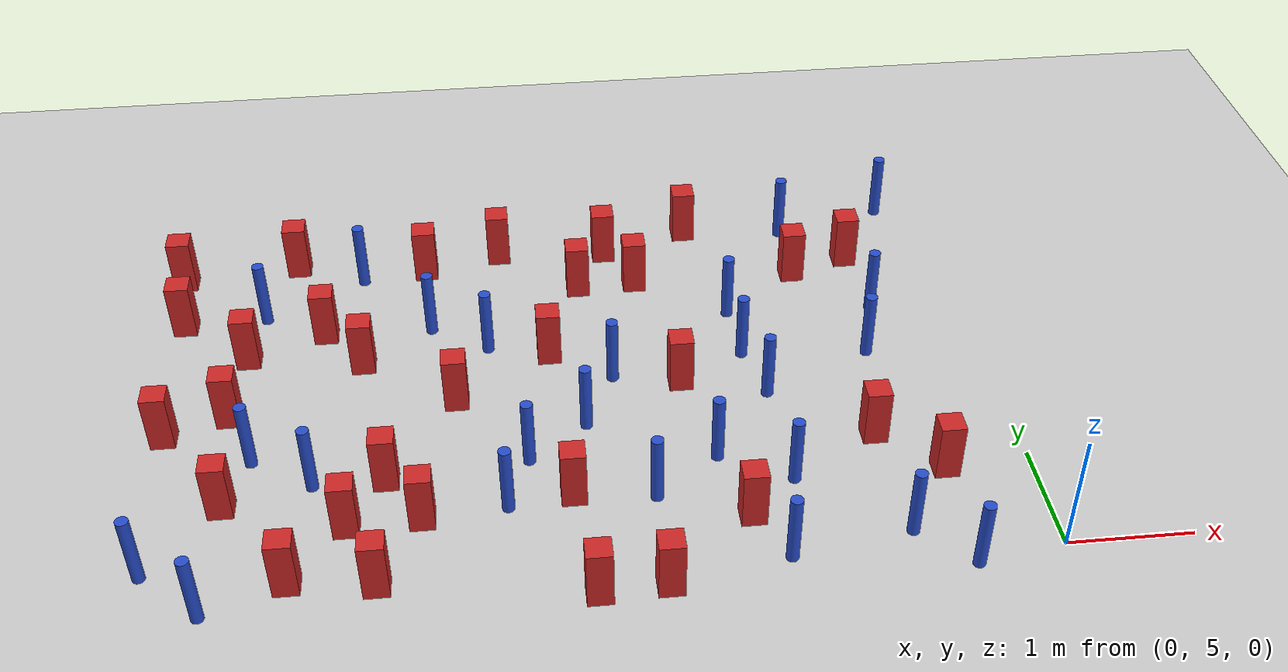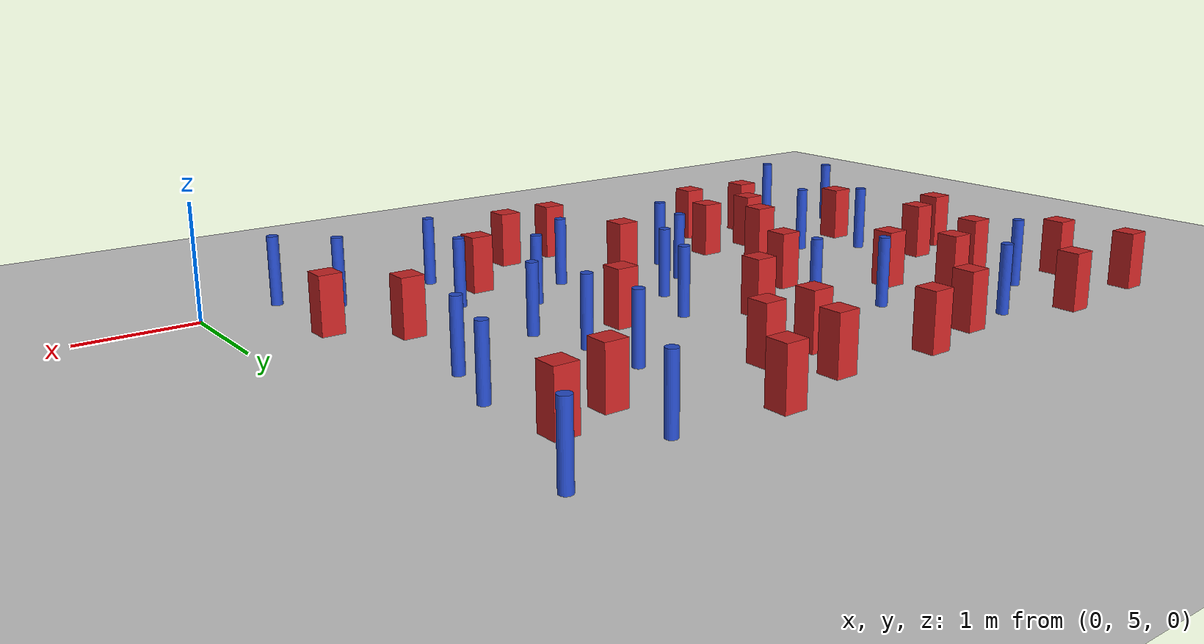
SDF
<sdf version="1.6">
 <world name="default">
  <model name="ground_plane">
   <static>1</static>
   <link name="link">
    <collision name="collision">
     <geometry><plane><normal>0 0 1</normal><size>100 100</size></plane></geometry>
     <surface><friction><ode><mu>100</mu><mu2>50</mu2></ode></friction></surface>
    </collision>
    <visual name="visual">
     <cast_shadows>0</cast_shadows>
     <geometry><plane><normal>0 0 1</normal><size>100 100</size></plane></geometry>
     <material>
      <ambient>1.0 1.0 1.0 1.0</ambient>
      <diffuse>0.8 0.8 0.8 1.0</diffuse>
      <specular>0.01 0.01 0.01 1.000000</specular>
     </material>
    </visual>
   </link>
  </model>
  <model name="square_post_obstacle5">
   <static>true</static>
   <pose>-5.93562843319 9.12042598517 8.22691968438e-08 7.22125133819e-06 -7.54495500217e-07 2.29674213826e-05</pose>
   <link name="link">
    <pose>0 0 0.25 0 -0 0</pose>
    <inertial>
     <mass>100</mass>
     <inertia>
      <ixx>0.166667</ixx>
      <ixy>0</ixy>
      <ixz>0</ixz>
      <iyy>0.166667</iyy>
      <iyz>0</iyz>
      <izz>0.166667</izz>
     </inertia>
    </inertial>
    <collision name="collision"><geometry><box><size>.2 .2 .5</size></box></geometry></collision>
    <visual name="visual">
     <geometry><box><size>.2 .2 .5</size></box></geometry>
     <material>
      <script><name>Gazebo/Red</name><uri>file://media/materials/scripts/gazebo.material</uri></script>
     </material>
    </visual>
   </link>
  </model>
  <model name="square_post_obstacle8">
   <static>true</static>
   <pose>-6.37462192546 7.08235323561 8.22691968438e-08 7.2212513382e-06 -7.54495500217e-07 2.29674213826e-05</pose>
   <link name="link">
    <pose>0 0 0.25 0 -0 0</pose>
    <inertial>
     <mass>100</mass>
     <inertia>
      <ixx>0.166667</ixx>
      <ixy>0</ixy>
      <ixz>0</ixz>
      <iyy>0.166667</iyy>
      <iyz>0</iyz>
      <izz>0.166667</izz>
     </inertia>
    </inertial>
    <collision name="collision"><geometry><box><size>.2 .2 .5</size></box></geometry></collision>
    <visual name="visual">
     <geometry><box><size>.2 .2 .5</size></box></geometry>
     <material>
      <script><name>Gazebo/Red</name><uri>file://media/materials/scripts/gazebo.material</uri></script>
     </material>
    </visual>
   </link>
  </model>
  <model name="pole_obstacle10">
   <static>true</static>
   <pose>-1.00870879884 7.38911551066 2.88873142074e-08 -9.90536689792e-09 4.6021994899e-07 -1.2096599496e-07</pose>
   <link name="link">
    <pose>0 0 0.3 0 -0 0</pose>
    <inertial>
     <mass>1</mass>
     <inertia><ixx>0.145833</ixx><ixy>0</ixy><ixz>0</ixz><iyy>0.145833</iyy><iyz>0</iyz><izz>0.125</izz></inertia>
    </inertial>
    <collision name="collision">
     <geometry><cylinder><radius>0.05</radius><length>.6</length></cylinder></geometry>
    </collision>
    <visual name="visual">
     <geometry><cylinder><radius>0.05</radius><length>.6</length></cylinder></geometry>
     <material>
      <script><name>Gazebo/Blue</name><uri>file://media/materials/scripts/gazebo.material</uri></script>
     </material>
    </visual>
   </link>
  </model>
  <model name="square_post_obstacle22">
   <static>true</static>
   <pose>-3.4165327686 8.55188839009 8.22691968438e-08 7.22125133819e-06 -7.54495500217e-07 2.29674213826e-05</pose>
   <link name="link">
    <pose>0 0 0.25 0 -0 0</pose>
    <inertial>
     <mass>100</mass>
     <inertia>
      <ixx>0.166667</ixx>
      <ixy>0</ixy>
      <ixz>0</ixz>
      <iyy>0.166667</iyy>
      <iyz>0</iyz>
      <izz>0.166667</izz>
     </inertia>
    </inertial>
    <collision name="collision"><geometry><box><size>.2 .2 .5</size></box></geometry></collision>
    <visual name="visual">
     <geometry><box><size>.2 .2 .5</size></box></geometry>
     <material>
      <script><name>Gazebo/Red</name><uri>file://media/materials/scripts/gazebo.material</uri></script>
     </material>
    </visual>
   </link>
  </model>
  <model name="square_post_obstacle23">
   <static>true</static>
   <pose>-5.64145572779 8.10161814968 8.22691968438e-08 7.22125133819e-06 -7.54495500217e-07 2.29674213826e-05</pose>
   <link name="link">
    <pose>0 0 0.25 0 -0 0</pose>
    <inertial>
     <mass>100</mass>
     <inertia>
      <ixx>0.166667</ixx>
      <ixy>0</ixy>
      <ixz>0</ixz>
      <iyy>0.166667</iyy>
      <iyz>0</iyz>
      <izz>0.166667</izz>
     </inertia>
    </inertial>
    <collision name="collision"><geometry><box><size>.2 .2 .5</size></box></geometry></collision>
    <visual name="visual">
     <geometry><box><size>.2 .2 .5</size></box></geometry>
     <material>
      <script><name>Gazebo/Red</name><uri>file://media/materials/scripts/gazebo.material</uri></script>
     </material>
    </visual>
   </link>
  </model>
  <model name="square_post_obstacle24">
   <static>true</static>
   <pose>-6.87117180458 8.34306343805 8.22691968438e-08 7.22125133819e-06 -7.54495500217e-07 2.29674213826e-05</pose>
   <link name="link">
    <pose>0 0 0.25 0 -0 0</pose>
    <inertial>
     <mass>100</mass>
     <inertia>
      <ixx>0.166667</ixx>
      <ixy>0</ixy>
      <ixz>0</ixz>
      <iyy>0.166667</iyy>
      <iyz>0</iyz>
      <izz>0.166667</izz>
     </inertia>
    </inertial>
    <collision name="collision"><geometry><box><size>.2 .2 .5</size></box></geometry></collision>
    <visual name="visual">
     <geometry><box><size>.2 .2 .5</size></box></geometry>
     <material>
      <script><name>Gazebo/Red</name><uri>file://media/materials/scripts/gazebo.material</uri></script>
     </material>
    </visual>
   </link>
  </model>
  <model name="square_post_obstacle28">
   <static>true</static>
   <pose>-6.87716300165 6.88733941895 8.22691968438e-08 7.2212513382e-06 -7.54495500217e-07 2.29674213826e-05</pose>
   <link name="link">
    <pose>0 0 0.25 0 -0 0</pose>
    <inertial>
     <mass>100</mass>
     <inertia>
      <ixx>0.166667</ixx>
      <ixy>0</ixy>
      <ixz>0</ixz>
      <iyy>0.166667</iyy>
      <iyz>0</iyz>
      <izz>0.166667</izz>
     </inertia>
    </inertial>
    <collision name="collision"><geometry><box><size>.2 .2 .5</size></box></geometry></collision>
    <visual name="visual">
     <geometry><box><size>.2 .2 .5</size></box></geometry>
     <material>
      <script><name>Gazebo/Red</name><uri>file://media/materials/scripts/gazebo.material</uri></script>
     </material>
    </visual>
   </link>
  </model>
  <model name="square_post_obstacle33">
   <static>true</static>
   <pose>-1.17758744173 6.34055151604 8.22691968438e-08 7.2212513382e-06 -7.54495500217e-07 2.29674213826e-05</pose>
   <link name="link">
    <pose>0 0 0.25 0 -0 0</pose>
    <inertial>
     <mass>100</mass>
     <inertia>
      <ixx>0.166667</ixx>
      <ixy>0</ixy>
      <ixz>0</ixz>
      <iyy>0.166667</iyy>
      <iyz>0</iyz>
      <izz>0.166667</izz>
     </inertia>
    </inertial>
    <collision name="collision"><geometry><box><size>.2 .2 .5</size></box></geometry></collision>
    <visual name="visual">
     <geometry><box><size>.2 .2 .5</size></box></geometry>
     <material>
      <script><name>Gazebo/Red</name><uri>file://media/materials/scripts/gazebo.material</uri></script>
     </material>
    </visual>
   </link>
  </model>
  <model name="square_post_obstacle34">
   <static>true</static>
   <pose>-4.77567840381 8.94645558912 8.22691968438e-08 7.22125133819e-06 -7.54495500217e-07 2.29674213826e-05</pose>
   <link name="link">
    <pose>0 0 0.25 0 -0 0</pose>
    <inertial>
     <mass>100</mass>
     <inertia>
      <ixx>0.166667</ixx>
      <ixy>0</ixy>
      <ixz>0</ixz>
      <iyy>0.166667</iyy>
      <iyz>0</iyz>
      <izz>0.166667</izz>
     </inertia>
    </inertial>
    <collision name="collision"><geometry><box><size>.2 .2 .5</size></box></geometry></collision>
    <visual name="visual">
     <geometry><box><size>.2 .2 .5</size></box></geometry>
     <material>
      <script><name>Gazebo/Red</name><uri>file://media/materials/scripts/gazebo.material</uri></script>
     </material>
    </visual>
   </link>
  </model>
  <model name="pole_obstacle32">
   <static>true</static>
   <pose>-3.21099400656 7.27937895278 2.88873142074e-08 -9.90536689859e-09 4.60219948989e-07 -1.20965994961e-07</pose>
   <link name="link">
    <pose>0 0 0.3 0 -0 0</pose>
    <inertial>
     <mass>1</mass>
     <inertia><ixx>0.145833</ixx><ixy>0</ixy><ixz>0</ixz><iyy>0.145833</iyy><iyz>0</iyz><izz>0.125</izz></inertia>
    </inertial>
    <collision name="collision">
     <geometry><cylinder><radius>0.05</radius><length>.6</length></cylinder></geometry>
    </collision>
    <visual name="visual">
     <geometry><cylinder><radius>0.05</radius><length>.6</length></cylinder></geometry>
     <material>
      <script><name>Gazebo/Blue</name><uri>file://media/materials/scripts/gazebo.material</uri></script>
     </material>
    </visual>
   </link>
  </model>
  <model name="square_post_obstacle35">
   <static>true</static>
   <pose>-0.703884505129 5.88942801562 8.22691968438e-08 7.2212513382e-06 -7.54495500217e-07 2.29674213826e-05</pose>
   <link name="link">
    <pose>0 0 0.25 0 -0 0</pose>
    <inertial>
     <mass>100</mass>
     <inertia>
      <ixx>0.166667</ixx>
      <ixy>0</ixy>
      <ixz>0</ixz>
      <iyy>0.166667</iyy>
      <iyz>0</iyz>
      <izz>0.166667</izz>
     </inertia>
    </inertial>
    <collision name="collision"><geometry><box><size>.2 .2 .5</size></box></geometry></collision>
    <visual name="visual">
     <geometry><box><size>.2 .2 .5</size></box></geometry>
     <material>
      <script><name>Gazebo/Red</name><uri>file://media/materials/scripts/gazebo.material</uri></script>
     </material>
    </visual>
   </link>
  </model>
  <model name="square_post_obstacle37">
   <static>true</static>
   <pose>-5.12672349522 5.10152777755 8.22691968438e-08 7.22125133819e-06 -7.54495500217e-07 2.29674213826e-05</pose>
   <link name="link">
    <pose>0 0 0.25 0 -0 0</pose>
    <inertial>
     <mass>100</mass>
     <inertia>
      <ixx>0.166667</ixx>
      <ixy>0</ixy>
      <ixz>0</ixz>
      <iyy>0.166667</iyy>
      <iyz>0</iyz>
      <izz>0.166667</izz>
     </inertia>
    </inertial>
    <collision name="collision"><geometry><box><size>.2 .2 .5</size></box></geometry></collision>
    <visual name="visual">
     <geometry><box><size>.2 .2 .5</size></box></geometry>
     <material>
      <script><name>Gazebo/Red</name><uri>file://media/materials/scripts/gazebo.material</uri></script>
     </material>
    </visual>
   </link>
  </model>
  <model name="square_post_obstacle50">
   <static>true</static>
   <pose>-3.63672029787 5.88860730451 8.22691968438e-08 7.2212513382e-06 -7.54495500217e-07 2.29674213826e-05</pose>
   <link name="link">
    <pose>0 0 0.25 0 -0 0</pose>
    <inertial>
     <mass>100</mass>
     <inertia>
      <ixx>0.166667</ixx>
      <ixy>0</ixy>
      <ixz>0</ixz>
      <iyy>0.166667</iyy>
      <iyz>0</iyz>
      <izz>0.166667</izz>
     </inertia>
    </inertial>
    <collision name="collision"><geometry><box><size>.2 .2 .5</size></box></geometry></collision>
    <visual name="visual">
     <geometry><box><size>.2 .2 .5</size></box></geometry>
     <material>
      <script><name>Gazebo/Red</name><uri>file://media/materials/scripts/gazebo.material</uri></script>
     </material>
    </visual>
   </link>
  </model>
  <model name="square_post_obstacle56">
   <static>true</static>
   <pose>-3.00138319875 4.88504545819 8.22691968438e-08 7.2212513382e-06 -7.54495500217e-07 2.29674213826e-05</pose>
   <link name="link">
    <pose>0 0 0.25 0 -0 0</pose>
    <inertial>
     <mass>100</mass>
     <inertia>
      <ixx>0.166667</ixx>
      <ixy>0</ixy>
      <ixz>0</ixz>
      <iyy>0.166667</iyy>
      <iyz>0</iyz>
      <izz>0.166667</izz>
     </inertia>
    </inertial>
    <collision name="collision"><geometry><box><size>.2 .2 .5</size></box></geometry></collision>
    <visual name="visual">
     <geometry><box><size>.2 .2 .5</size></box></geometry>
     <material>
      <script><name>Gazebo/Red</name><uri>file://media/materials/scripts/gazebo.material</uri></script>
     </material>
    </visual>
   </link>
  </model>
  <model name="square_post_obstacle57">
   <static>true</static>
   <pose>-2.29465638975 5.5310866146 8.22691968438e-08 7.2212513382e-06 -7.54495500217e-07 2.29674213826e-05</pose>
   <link name="link">
    <pose>0 0 0.25 0 -0 0</pose>
    <inertial>
     <mass>100</mass>
     <inertia>
      <ixx>0.166667</ixx>
      <ixy>0</ixy>
      <ixz>0</ixz>
      <iyy>0.166667</iyy>
      <iyz>0</iyz>
      <izz>0.166667</izz>
     </inertia>
    </inertial>
    <collision name="collision"><geometry><box><size>.2 .2 .5</size></box></geometry></collision>
    <visual name="visual">
     <geometry><box><size>.2 .2 .5</size></box></geometry>
     <material>
      <script><name>Gazebo/Red</name><uri>file://media/materials/scripts/gazebo.material</uri></script>
     </material>
    </visual>
   </link>
  </model>
  <model name="square_post_obstacle62">
   <static>true</static>
   <pose>-2.37217873016 9.32070146877 8.22691968438e-08 7.22125133819e-06 -7.54495500217e-07 2.29674213826e-05</pose>
   <link name="link">
    <pose>0 0 0.25 0 -0 0</pose>
    <inertial>
     <mass>100</mass>
     <inertia>
      <ixx>0.166667</ixx>
      <ixy>0</ixy>
      <ixz>0</ixz>
      <iyy>0.166667</iyy>
      <iyz>0</iyz>
      <izz>0.166667</izz>
     </inertia>
    </inertial>
    <collision name="collision"><geometry><box><size>.2 .2 .5</size></box></geometry></collision>
    <visual name="visual">
     <geometry><box><size>.2 .2 .5</size></box></geometry>
     <material>
      <script><name>Gazebo/Red</name><uri>file://media/materials/scripts/gazebo.material</uri></script>
     </material>
    </visual>
   </link>
  </model>
  <model name="square_post_obstacle71">
   <static>true</static>
   <pose>-0.935742254519 8.75219385343 8.22691968438e-08 7.22125133819e-06 -7.54495500217e-07 2.29674213826e-05</pose>
   <link name="link">
    <pose>0 0 0.25 0 -0 0</pose>
    <inertial>
     <mass>100</mass>
     <inertia>
      <ixx>0.166667</ixx>
      <ixy>0</ixy>
      <ixz>0</ixz>
      <iyy>0.166667</iyy>
      <iyz>0</iyz>
      <izz>0.166667</izz>
     </inertia>
    </inertial>
    <collision name="collision"><geometry><box><size>.2 .2 .5</size></box></geometry></collision>
    <visual name="visual">
     <geometry><box><size>.2 .2 .5</size></box></geometry>
     <material>
      <script><name>Gazebo/Red</name><uri>file://media/materials/scripts/gazebo.material</uri></script>
     </material>
    </visual>
   </link>
  </model>
  <model name="pole_obstacle68">
   <static>true</static>
   <pose>-6.39530534537 4.9442442855 2.88873142074e-08 -9.90536690842e-09 4.60219948965e-07 -1.20965994976e-07</pose>
   <link name="link">
    <pose>0 0 0.3 0 -0 0</pose>
    <inertial>
     <mass>1</mass>
     <inertia><ixx>0.145833</ixx><ixy>0</ixy><ixz>0</ixz><iyy>0.145833</iyy><iyz>0</iyz><izz>0.125</izz></inertia>
    </inertial>
    <collision name="collision">
     <geometry><cylinder><radius>0.05</radius><length>.6</length></cylinder></geometry>
    </collision>
    <visual name="visual">
     <geometry><cylinder><radius>0.05</radius><length>.6</length></cylinder></geometry>
     <material>
      <script><name>Gazebo/Blue</name><uri>file://media/materials/scripts/gazebo.material</uri></script>
     </material>
    </visual>
   </link>
  </model>
  <model name="square_post_obstacle75">
   <static>true</static>
   <pose>-5.78051265357 5.18833938208 8.22691968438e-08 7.2212513382e-06 -7.54495500217e-07 2.29674213826e-05</pose>
   <link name="link">
    <pose>0 0 0.25 0 -0 0</pose>
    <inertial>
     <mass>100</mass>
     <inertia>
      <ixx>0.166667</ixx>
      <ixy>0</ixy>
      <ixz>0</ixz>
      <iyy>0.166667</iyy>
      <iyz>0</iyz>
      <izz>0.166667</izz>
     </inertia>
    </inertial>
    <collision name="collision"><geometry><box><size>.2 .2 .5</size></box></geometry></collision>
    <visual name="visual">
     <geometry><box><size>.2 .2 .5</size></box></geometry>
     <material>
      <script><name>Gazebo/Red</name><uri>file://media/materials/scripts/gazebo.material</uri></script>
     </material>
    </visual>
   </link>
  </model>
  <model name="pole_obstacle69">
   <static>true</static>
   <pose>-6.17675090536 8.38403267028 2.88873142074e-08 -9.9053668967e-09 4.60219948993e-07 -1.20965994957e-07</pose>
   <link name="link">
    <pose>0 0 0.3 0 -0 0</pose>
    <inertial>
     <mass>1</mass>
     <inertia><ixx>0.145833</ixx><ixy>0</ixy><ixz>0</ixz><iyy>0.145833</iyy><iyz>0</iyz><izz>0.125</izz></inertia>
    </inertial>
    <collision name="collision">
     <geometry><cylinder><radius>0.05</radius><length>.6</length></cylinder></geometry>
    </collision>
    <visual name="visual">
     <geometry><cylinder><radius>0.05</radius><length>.6</length></cylinder></geometry>
     <material>
      <script><name>Gazebo/Blue</name><uri>file://media/materials/scripts/gazebo.material</uri></script>
     </material>
    </visual>
   </link>
  </model>
  <model name="pole_obstacle72">
   <static>true</static>
   <pose>-2.46842969681 6.21809078367 2.88873142074e-08 -9.90536689859e-09 4.60219948989e-07 -1.20965994961e-07</pose>
   <link name="link">
    <pose>0 0 0.3 0 -0 0</pose>
    <inertial>
     <mass>1</mass>
     <inertia><ixx>0.145833</ixx><ixy>0</ixy><ixz>0</ixz><iyy>0.145833</iyy><iyz>0</iyz><izz>0.125</izz></inertia>
    </inertial>
    <collision name="collision">
     <geometry><cylinder><radius>0.05</radius><length>.6</length></cylinder></geometry>
    </collision>
    <visual name="visual">
     <geometry><cylinder><radius>0.05</radius><length>.6</length></cylinder></geometry>
     <material>
      <script><name>Gazebo/Blue</name><uri>file://media/materials/scripts/gazebo.material</uri></script>
     </material>
    </visual>
   </link>
  </model>
  <model name="pole_obstacle75">
   <static>true</static>
   <pose>-5.34147875425 8.87095544816 2.88873142074e-08 -9.9053668967e-09 4.60219948993e-07 -1.20965994957e-07</pose>
   <link name="link">
    <pose>0 0 0.3 0 -0 0</pose>
    <inertial>
     <mass>1</mass>
     <inertia><ixx>0.145833</ixx><ixy>0</ixy><ixz>0</ixz><iyy>0.145833</iyy><iyz>0</iyz><izz>0.125</izz></inertia>
    </inertial>
    <collision name="collision">
     <geometry><cylinder><radius>0.05</radius><length>.6</length></cylinder></geometry>
    </collision>
    <visual name="visual">
     <geometry><cylinder><radius>0.05</radius><length>.6</length></cylinder></geometry>
     <material>
      <script><name>Gazebo/Blue</name><uri>file://media/materials/scripts/gazebo.material</uri></script>
     </material>
    </visual>
   </link>
  </model>
  <model name="pole_obstacle80">
   <static>true</static>
   <pose>-2.12411606502 8.0563828312 2.88873142074e-08 -9.90536692318e-09 4.6021994893e-07 -1.20965994988e-07</pose>
   <link name="link">
    <pose>0 0 0.3 0 -0 0</pose>
    <inertial>
     <mass>1</mass>
     <inertia><ixx>0.145833</ixx><ixy>0</ixy><ixz>0</ixz><iyy>0.145833</iyy><iyz>0</iyz><izz>0.125</izz></inertia>
    </inertial>
    <collision name="collision">
     <geometry><cylinder><radius>0.05</radius><length>.6</length></cylinder></geometry>
    </collision>
    <visual name="visual">
     <geometry><cylinder><radius>0.05</radius><length>.6</length></cylinder></geometry>
     <material>
      <script><name>Gazebo/Blue</name><uri>file://media/materials/scripts/gazebo.material</uri></script>
     </material>
    </visual>
   </link>
  </model>
  <model name="pole_obstacle87">
   <static>true</static>
   <pose>-1.94570496671 6.94355473399 2.88873142074e-08 -9.90536689852e-09 4.60219948989e-07 -1.2096599496e-07</pose>
   <link name="link">
    <pose>0 0 0.3 0 -0 0</pose>
    <inertial>
     <mass>1</mass>
     <inertia><ixx>0.145833</ixx><ixy>0</ixy><ixz>0</ixz><iyy>0.145833</iyy><iyz>0</iyz><izz>0.125</izz></inertia>
    </inertial>
    <collision name="collision">
     <geometry><cylinder><radius>0.05</radius><length>.6</length></cylinder></geometry>
    </collision>
    <visual name="visual">
     <geometry><cylinder><radius>0.05</radius><length>.6</length></cylinder></geometry>
     <material>
      <script><name>Gazebo/Blue</name><uri>file://media/materials/scripts/gazebo.material</uri></script>
     </material>
    </visual>
   </link>
  </model>
  <model name="pole_obstacle93">
   <static>true</static>
   <pose>-2.06820260938 5.07672958313 2.88873142074e-08 -9.90536689859e-09 4.60219948989e-07 -1.20965994961e-07</pose>
   <link name="link">
    <pose>0 0 0.3 0 -0 0</pose>
    <inertial>
     <mass>1</mass>
     <inertia><ixx>0.145833</ixx><ixy>0</ixy><ixz>0</ixz><iyy>0.145833</iyy><iyz>0</iyz><izz>0.125</izz></inertia>
    </inertial>
    <collision name="collision">
     <geometry><cylinder><radius>0.05</radius><length>.6</length></cylinder></geometry>
    </collision>
    <visual name="visual">
     <geometry><cylinder><radius>0.05</radius><length>.6</length></cylinder></geometry>
     <material>
      <script><name>Gazebo/Blue</name><uri>file://media/materials/scripts/gazebo.material</uri></script>
     </material>
    </visual>
   </link>
  </model>
  <model name="square_post_obstacle98">
   <static>true</static>
   <pose>-3.72768320635 7.62372427439 8.22691968438e-08 7.2212513382e-06 -7.54495500217e-07 2.29674213826e-05</pose>
   <link name="link">
    <pose>0 0 0.25 0 -0 0</pose>
    <inertial>
     <mass>100</mass>
     <inertia>
      <ixx>0.166667</ixx>
      <ixy>0</ixy>
      <ixz>0</ixz>
      <iyy>0.166667</iyy>
      <iyz>0</iyz>
      <izz>0.166667</izz>
     </inertia>
    </inertial>
    <collision name="collision"><geometry><box><size>.2 .2 .5</size></box></geometry></collision>
    <visual name="visual">
     <geometry><box><size>.2 .2 .5</size></box></geometry>
     <material>
      <script><name>Gazebo/Red</name><uri>file://media/materials/scripts/gazebo.material</uri></script>
     </material>
    </visual>
   </link>
  </model>
  <model name="pole_obstacle111">
   <static>true</static>
   <pose>-1.45840569961 9.23605950732 2.88873142074e-08 -9.90536690474e-09 4.60219948974e-07 -1.2096599497e-07</pose>
   <link name="link">
    <pose>0 0 0.3 0 -0 0</pose>
    <inertial>
     <mass>1</mass>
     <inertia><ixx>0.145833</ixx><ixy>0</ixy><ixz>0</ixz><iyy>0.145833</iyy><iyz>0</iyz><izz>0.125</izz></inertia>
    </inertial>
    <collision name="collision">
     <geometry><cylinder><radius>0.05</radius><length>.6</length></cylinder></geometry>
    </collision>
    <visual name="visual">
     <geometry><cylinder><radius>0.05</radius><length>.6</length></cylinder></geometry>
     <material>
      <script><name>Gazebo/Blue</name><uri>file://media/materials/scripts/gazebo.material</uri></script>
     </material>
    </visual>
   </link>
  </model>
  <model name="square_post_obstacle100">
   <static>true</static>
   <pose>-5.08372246234 6.20552039569 8.22691968438e-08 7.2212513382e-06 -7.54495500217e-07 2.29674213826e-05</pose>
   <link name="link">
    <pose>0 0 0.25 0 -0 0</pose>
    <inertial>
     <mass>100</mass>
     <inertia>
      <ixx>0.166667</ixx>
      <ixy>0</ixy>
      <ixz>0</ixz>
      <iyy>0.166667</iyy>
      <iyz>0</iyz>
      <izz>0.166667</izz>
     </inertia>
    </inertial>
    <collision name="collision"><geometry><box><size>.2 .2 .5</size></box></geometry></collision>
    <visual name="visual">
     <geometry><box><size>.2 .2 .5</size></box></geometry>
     <material>
      <script><name>Gazebo/Red</name><uri>file://media/materials/scripts/gazebo.material</uri></script>
     </material>
    </visual>
   </link>
  </model>
  <model name="pole_obstacle119">
   <static>true</static>
   <pose>-0.703013685076 4.8703206893 2.88873142074e-08 -9.90536689661e-09 4.60219948993e-07 -1.20965994957e-07</pose>
   <link name="link">
    <pose>0 0 0.3 0 -0 0</pose>
    <inertial>
     <mass>1</mass>
     <inertia><ixx>0.145833</ixx><ixy>0</ixy><ixz>0</ixz><iyy>0.145833</iyy><iyz>0</iyz><izz>0.125</izz></inertia>
    </inertial>
    <collision name="collision">
     <geometry><cylinder><radius>0.05</radius><length>.6</length></cylinder></geometry>
    </collision>
    <visual name="visual">
     <geometry><cylinder><radius>0.05</radius><length>.6</length></cylinder></geometry>
     <material>
      <script><name>Gazebo/Blue</name><uri>file://media/materials/scripts/gazebo.material</uri></script>
     </material>
    </visual>
   </link>
  </model>
  <model name="square_post_obstacle109">
   <static>true</static>
   <pose>-4.10915286289 9.12331559307 8.22691968438e-08 7.22125133819e-06 -7.54495500217e-07 2.29674213826e-05</pose>
   <link name="link">
    <pose>0 0 0.25 0 -0 0</pose>
    <inertial>
     <mass>100</mass>
     <inertia>
      <ixx>0.166667</ixx>
      <ixy>0</ixy>
      <ixz>0</ixz>
      <iyy>0.166667</iyy>
      <iyz>0</iyz>
      <izz>0.166667</izz>
     </inertia>
    </inertial>
    <collision name="collision"><geometry><box><size>.2 .2 .5</size></box></geometry></collision>
    <visual name="visual">
     <geometry><box><size>.2 .2 .5</size></box></geometry>
     <material>
      <script><name>Gazebo/Red</name><uri>file://media/materials/scripts/gazebo.material</uri></script>
     </material>
    </visual>
   </link>
  </model>
  <model name="square_post_obstacle111">
   <static>true</static>
   <pose>-5.30519801797 7.65576824097 8.22691968438e-08 7.22125133819e-06 -7.54495500217e-07 2.29674213826e-05</pose>
   <link name="link">
    <pose>0 0 0.25 0 -0 0</pose>
    <inertial>
     <mass>100</mass>
     <inertia>
      <ixx>0.166667</ixx>
      <ixy>0</ixy>
      <ixz>0</ixz>
      <iyy>0.166667</iyy>
      <iyz>0</iyz>
      <izz>0.166667</izz>
     </inertia>
    </inertial>
    <collision name="collision"><geometry><box><size>.2 .2 .5</size></box></geometry></collision>
    <visual name="visual">
     <geometry><box><size>.2 .2 .5</size></box></geometry>
     <material>
      <script><name>Gazebo/Red</name><uri>file://media/materials/scripts/gazebo.material</uri></script>
     </material>
    </visual>
   </link>
  </model>
  <model name="pole_obstacle121">
   <static>true</static>
   <pose>-0.471133806877 9.4948521679 2.88873142074e-08 -9.90536690305e-09 4.60219948978e-07 -1.20965994968e-07</pose>
   <link name="link">
    <pose>0 0 0.3 0 -0 0</pose>
    <inertial>
     <mass>1</mass>
     <inertia><ixx>0.145833</ixx><ixy>0</ixy><ixz>0</ixz><iyy>0.145833</iyy><iyz>0</iyz><izz>0.125</izz></inertia>
    </inertial>
    <collision name="collision">
     <geometry><cylinder><radius>0.05</radius><length>.6</length></cylinder></geometry>
    </collision>
    <visual name="visual">
     <geometry><cylinder><radius>0.05</radius><length>.6</length></cylinder></geometry>
     <material>
      <script><name>Gazebo/Blue</name><uri>file://media/materials/scripts/gazebo.material</uri></script>
     </material>
    </visual>
   </link>
  </model>
  <model name="pole_obstacle133">
   <static>true</static>
   <pose>-6.86737726866 5.37982593358 2.88873142074e-08 -9.90536690842e-09 4.60219948965e-07 -1.20965994976e-07</pose>
   <link name="link">
    <pose>0 0 0.3 0 -0 0</pose>
    <inertial>
     <mass>1</mass>
     <inertia><ixx>0.145833</ixx><ixy>0</ixy><ixz>0</ixz><iyy>0.145833</iyy><iyz>0</iyz><izz>0.125</izz></inertia>
    </inertial>
    <collision name="collision">
     <geometry><cylinder><radius>0.05</radius><length>.6</length></cylinder></geometry>
    </collision>
    <visual name="visual">
     <geometry><cylinder><radius>0.05</radius><length>.6</length></cylinder></geometry>
     <material>
      <script><name>Gazebo/Blue</name><uri>file://media/materials/scripts/gazebo.material</uri></script>
     </material>
    </visual>
   </link>
  </model>
  <model name="pole_obstacle138">
   <static>true</static>
   <pose>-3.95874128711 6.32804297368 2.88873142074e-08 -9.90536689401e-09 4.60219948999e-07 -1.20965994955e-07</pose>
   <link name="link">
    <pose>0 0 0.3 0 -0 0</pose>
    <inertial>
     <mass>1</mass>
     <inertia><ixx>0.145833</ixx><ixy>0</ixy><ixz>0</ixz><iyy>0.145833</iyy><iyz>0</iyz><izz>0.125</izz></inertia>
    </inertial>
    <collision name="collision">
     <geometry><cylinder><radius>0.05</radius><length>.6</length></cylinder></geometry>
    </collision>
    <visual name="visual">
     <geometry><cylinder><radius>0.05</radius><length>.6</length></cylinder></geometry>
     <material>
      <script><name>Gazebo/Blue</name><uri>file://media/materials/scripts/gazebo.material</uri></script>
     </material>
    </visual>
   </link>
  </model>
  <model name="square_post_obstacle119">
   <static>true</static>
   <pose>-4.52333108467 7.09971369178 8.22691968438e-08 7.22125133819e-06 -7.54495500217e-07 2.29674213826e-05</pose>
   <link name="link">
    <pose>0 0 0.25 0 -0 0</pose>
    <inertial>
     <mass>100</mass>
     <inertia>
      <ixx>0.166667</ixx>
      <ixy>0</ixy>
      <ixz>0</ixz>
      <iyy>0.166667</iyy>
      <iyz>0</iyz>
      <izz>0.166667</izz>
     </inertia>
    </inertial>
    <collision name="collision"><geometry><box><size>.2 .2 .5</size></box></geometry></collision>
    <visual name="visual">
     <geometry><box><size>.2 .2 .5</size></box></geometry>
     <material>
      <script><name>Gazebo/Red</name><uri>file://media/materials/scripts/gazebo.material</uri></script>
     </material>
    </visual>
   </link>
  </model>
  <model name="pole_obstacle141">
   <static>true</static>
   <pose>-5.65762176191 6.21097255029 2.88873142074e-08 -9.90536690842e-09 4.60219948965e-07 -1.20965994976e-07</pose>
   <link name="link">
    <pose>0 0 0.3 0 -0 0</pose>
    <inertial>
     <mass>1</mass>
     <inertia><ixx>0.145833</ixx><ixy>0</ixy><ixz>0</ixz><iyy>0.145833</iyy><iyz>0</iyz><izz>0.125</izz></inertia>
    </inertial>
    <collision name="collision">
     <geometry><cylinder><radius>0.05</radius><length>.6</length></cylinder></geometry>
    </collision>
    <visual name="visual">
     <geometry><cylinder><radius>0.05</radius><length>.6</length></cylinder></geometry>
     <material>
      <script><name>Gazebo/Blue</name><uri>file://media/materials/scripts/gazebo.material</uri></script>
     </material>
    </visual>
   </link>
  </model>
  <model name="pole_obstacle147">
   <static>true</static>
   <pose>-4.24439784083 7.77678593425 2.88873142074e-08 -9.90536690842e-09 4.60219948965e-07 -1.20965994976e-07</pose>
   <link name="link">
    <pose>0 0 0.3 0 -0 0</pose>
    <inertial>
     <mass>1</mass>
     <inertia><ixx>0.145833</ixx><ixy>0</ixy><ixz>0</ixz><iyy>0.145833</iyy><iyz>0</iyz><izz>0.125</izz></inertia>
    </inertial>
    <collision name="collision">
     <geometry><cylinder><radius>0.05</radius><length>.6</length></cylinder></geometry>
    </collision>
    <visual name="visual">
     <geometry><cylinder><radius>0.05</radius><length>.6</length></cylinder></geometry>
     <material>
      <script><name>Gazebo/Blue</name><uri>file://media/materials/scripts/gazebo.material</uri></script>
     </material>
    </visual>
   </link>
  </model>
  <model name="pole_obstacle149">
   <static>true</static>
   <pose>-3.47620801916 6.70368195335 2.88873142074e-08 -9.90536689859e-09 4.60219948989e-07 -1.20965994961e-07</pose>
   <link name="link">
    <pose>0 0 0.3 0 -0 0</pose>
    <inertial>
     <mass>1</mass>
     <inertia><ixx>0.145833</ixx><ixy>0</ixy><ixz>0</ixz><iyy>0.145833</iyy><iyz>0</iyz><izz>0.125</izz></inertia>
    </inertial>
    <collision name="collision">
     <geometry><cylinder><radius>0.05</radius><length>.6</length></cylinder></geometry>
    </collision>
    <visual name="visual">
     <geometry><cylinder><radius>0.05</radius><length>.6</length></cylinder></geometry>
     <material>
      <script><name>Gazebo/Blue</name><uri>file://media/materials/scripts/gazebo.material</uri></script>
     </material>
    </visual>
   </link>
  </model>
  <model name="square_post_obstacle145">
   <static>true</static>
   <pose>-4.79969181084 5.74741233806 8.22691968438e-08 7.2212513382e-06 -7.54495500217e-07 2.29674213826e-05</pose>
   <link name="link">
    <pose>0 0 0.25 0 -0 0</pose>
    <inertial>
     <mass>100</mass>
     <inertia>
      <ixx>0.166667</ixx>
      <ixy>0</ixy>
      <ixz>0</ixz>
      <iyy>0.166667</iyy>
      <iyz>0</iyz>
      <izz>0.166667</izz>
     </inertia>
    </inertial>
    <collision name="collision"><geometry><box><size>.2 .2 .5</size></box></geometry></collision>
    <visual name="visual">
     <geometry><box><size>.2 .2 .5</size></box></geometry>
     <material>
      <script><name>Gazebo/Red</name><uri>file://media/materials/scripts/gazebo.material</uri></script>
     </material>
    </visual>
   </link>
  </model>
  <model name="square_post_obstacle146">
   <static>true</static>
   <pose>-2.90618953374 8.57259789773 8.22691968438e-08 7.22125133819e-06 -7.54495500217e-07 2.29674213826e-05</pose>
   <link name="link">
    <pose>0 0 0.25 0 -0 0</pose>
    <inertial>
     <mass>100</mass>
     <inertia>
      <ixx>0.166667</ixx>
      <ixy>0</ixy>
      <ixz>0</ixz>
      <iyy>0.166667</iyy>
      <iyz>0</iyz>
      <izz>0.166667</izz>
     </inertia>
    </inertial>
    <collision name="collision"><geometry><box><size>.2 .2 .5</size></box></geometry></collision>
    <visual name="visual">
     <geometry><box><size>.2 .2 .5</size></box></geometry>
     <material>
      <script><name>Gazebo/Red</name><uri>file://media/materials/scripts/gazebo.material</uri></script>
     </material>
    </visual>
   </link>
  </model>
  <model name="pole_obstacle161">
   <static>true</static>
   <pose>-4.72980134902 8.09144017754 2.88873142074e-08 -9.9053668967e-09 4.60219948993e-07 -1.20965994957e-07</pose>
   <link name="link">
    <pose>0 0 0.3 0 -0 0</pose>
    <inertial>
     <mass>1</mass>
     <inertia><ixx>0.145833</ixx><ixy>0</ixy><ixz>0</ixz><iyy>0.145833</iyy><iyz>0</iyz><izz>0.125</izz></inertia>
    </inertial>
    <collision name="collision">
     <geometry><cylinder><radius>0.05</radius><length>.6</length></cylinder></geometry>
    </collision>
    <visual name="visual">
     <geometry><cylinder><radius>0.05</radius><length>.6</length></cylinder></geometry>
     <material>
      <script><name>Gazebo/Blue</name><uri>file://media/materials/scripts/gazebo.material</uri></script>
     </material>
    </visual>
   </link>
  </model>
  <model name="square_post_obstacle154">
   <static>true</static>
   <pose>-6.33509438747 6.03175751005 8.22691968438e-08 7.22125133819e-06 -7.54495500217e-07 2.29674213826e-05</pose>
   <link name="link">
    <pose>0 0 0.25 0 -0 0</pose>
    <inertial>
     <mass>100</mass>
     <inertia>
      <ixx>0.166667</ixx>
      <ixy>0</ixy>
      <ixz>0</ixz>
      <iyy>0.166667</iyy>
      <iyz>0</iyz>
      <izz>0.166667</izz>
     </inertia>
    </inertial>
    <collision name="collision"><geometry><box><size>.2 .2 .5</size></box></geometry></collision>
    <visual name="visual">
     <geometry><box><size>.2 .2 .5</size></box></geometry>
     <material>
      <script><name>Gazebo/Red</name><uri>file://media/materials/scripts/gazebo.material</uri></script>
     </material>
    </visual>
   </link>
  </model>
  <model name="square_post_obstacle156">
   <static>true</static>
   <pose>-6.94376687297 9.0074527485 8.22691968438e-08 7.22125133819e-06 -7.54495500217e-07 2.29674213826e-05</pose>
   <link name="link">
    <pose>0 0 0.25 0 -0 0</pose>
    <inertial>
     <mass>100</mass>
     <inertia>
      <ixx>0.166667</ixx>
      <ixy>0</ixy>
      <ixz>0</ixz>
      <iyy>0.166667</iyy>
      <iyz>0</iyz>
      <izz>0.166667</izz>
     </inertia>
    </inertial>
    <collision name="collision"><geometry><box><size>.2 .2 .5</size></box></geometry></collision>
    <visual name="visual">
     <geometry><box><size>.2 .2 .5</size></box></geometry>
     <material>
      <script><name>Gazebo/Red</name><uri>file://media/materials/scripts/gazebo.material</uri></script>
     </material>
    </visual>
   </link>
  </model>
  <model name="pole_obstacle164">
   <static>true</static>
   <pose>-2.9962092758 5.81579159369 2.88873142074e-08 -9.90536689859e-09 4.60219948989e-07 -1.20965994961e-07</pose>
   <link name="link">
    <pose>0 0 0.3 0 -0 0</pose>
    <inertial>
     <mass>1</mass>
     <inertia><ixx>0.145833</ixx><ixy>0</ixy><ixz>0</ixz><iyy>0.145833</iyy><iyz>0</iyz><izz>0.125</izz></inertia>
    </inertial>
    <collision name="collision">
     <geometry><cylinder><radius>0.05</radius><length>.6</length></cylinder></geometry>
    </collision>
    <visual name="visual">
     <geometry><cylinder><radius>0.05</radius><length>.6</length></cylinder></geometry>
     <material>
      <script><name>Gazebo/Blue</name><uri>file://media/materials/scripts/gazebo.material</uri></script>
     </material>
    </visual>
   </link>
  </model>
  <model name="pole_obstacle176">
   <static>true</static>
   <pose>-2.08159829281 7.47923939456 2.88873142074e-08 -9.90536689859e-09 4.60219948989e-07 -1.20965994961e-07</pose>
   <link name="link">
    <pose>0 0 0.3 0 -0 0</pose>
    <inertial>
     <mass>1</mass>
     <inertia><ixx>0.145833</ixx><ixy>0</ixy><ixz>0</ixz><iyy>0.145833</iyy><iyz>0</iyz><izz>0.125</izz></inertia>
    </inertial>
    <collision name="collision">
     <geometry><cylinder><radius>0.05</radius><length>.6</length></cylinder></geometry>
    </collision>
    <visual name="visual">
     <geometry><cylinder><radius>0.05</radius><length>.6</length></cylinder></geometry>
     <material>
      <script><name>Gazebo/Blue</name><uri>file://media/materials/scripts/gazebo.material</uri></script>
     </material>
    </visual>
   </link>
  </model>
  <model name="square_post_obstacle170">
   <static>true</static>
   <pose>-3.52278110577 4.85804884308 8.22691968438e-08 7.2212513382e-06 -7.54495500217e-07 2.29674213826e-05</pose>
   <link name="link">
    <pose>0 0 0.25 0 -0 0</pose>
    <inertial>
     <mass>100</mass>
     <inertia>
      <ixx>0.166667</ixx>
      <ixy>0</ixy>
      <ixz>0</ixz>
      <iyy>0.166667</iyy>
      <iyz>0</iyz>
      <izz>0.166667</izz>
     </inertia>
    </inertial>
    <collision name="collision"><geometry><box><size>.2 .2 .5</size></box></geometry></collision>
    <visual name="visual">
     <geometry><box><size>.2 .2 .5</size></box></geometry>
     <material>
      <script><name>Gazebo/Red</name><uri>file://media/materials/scripts/gazebo.material</uri></script>
     </material>
    </visual>
   </link>
  </model>
  <model name="pole_obstacle182">
   <static>true</static>
   <pose>-1.1107155917 5.24861257067 2.88873142074e-08 -9.90536689852e-09 4.60219948989e-07 -1.2096599496e-07</pose>
   <link name="link">
    <pose>0 0 0.3 0 -0 0</pose>
    <inertial>
     <mass>1</mass>
     <inertia><ixx>0.145833</ixx><ixy>0</ixy><ixz>0</ixz><iyy>0.145833</iyy><iyz>0</iyz><izz>0.125</izz></inertia>
    </inertial>
    <collision name="collision">
     <geometry><cylinder><radius>0.05</radius><length>.6</length></cylinder></geometry>
    </collision>
    <visual name="visual">
     <geometry><cylinder><radius>0.05</radius><length>.6</length></cylinder></geometry>
     <material>
      <script><name>Gazebo/Blue</name><uri>file://media/materials/scripts/gazebo.material</uri></script>
     </material>
    </visual>
   </link>
  </model>
  <model name="square_post_obstacle172">
   <static>true</static>
   <pose>-2.6507889839 7.15863225001 8.22691968438e-08 7.2212513382e-06 -7.54495500217e-07 2.29674213826e-05</pose>
   <link name="link">
    <pose>0 0 0.25 0 -0 0</pose>
    <inertial>
     <mass>100</mass>
     <inertia>
      <ixx>0.166667</ixx>
      <ixy>0</ixy>
      <ixz>0</ixz>
      <iyy>0.166667</iyy>
      <iyz>0</iyz>
      <izz>0.166667</izz>
     </inertia>
    </inertial>
    <collision name="collision"><geometry><box><size>.2 .2 .5</size></box></geometry></collision>
    <visual name="visual">
     <geometry><box><size>.2 .2 .5</size></box></geometry>
     <material>
      <script><name>Gazebo/Red</name><uri>file://media/materials/scripts/gazebo.material</uri></script>
     </material>
    </visual>
   </link>
  </model>
  <model name="square_post_obstacle182">
   <static>true</static>
   <pose>-6.28117962142 7.82346337301 8.22691968438e-08 7.22125133819e-06 -7.54495500217e-07 2.29674213826e-05</pose>
   <link name="link">
    <pose>0 0 0.25 0 -0 0</pose>
    <inertial>
     <mass>100</mass>
     <inertia>
      <ixx>0.166667</ixx>
      <ixy>0</ixy>
      <ixz>0</ixz>
      <iyy>0.166667</iyy>
      <iyz>0</iyz>
      <izz>0.166667</izz>
     </inertia>
    </inertial>
    <collision name="collision"><geometry><box><size>.2 .2 .5</size></box></geometry></collision>
    <visual name="visual">
     <geometry><box><size>.2 .2 .5</size></box></geometry>
     <material>
      <script><name>Gazebo/Red</name><uri>file://media/materials/scripts/gazebo.material</uri></script>
     </material>
    </visual>
   </link>
  </model>
  <model name="square_post_obstacle187">
   <static>true</static>
   <pose>-3.14712547796 9.05766830964 8.22691968438e-08 7.22125133819e-06 -7.54495500217e-07 2.29674213826e-05</pose>
   <link name="link">
    <pose>0 0 0.25 0 -0 0</pose>
    <inertial>
     <mass>100</mass>
     <inertia>
      <ixx>0.166667</ixx>
      <ixy>0</ixy>
      <ixz>0</ixz>
      <iyy>0.166667</iyy>
      <iyz>0</iyz>
      <izz>0.166667</izz>
     </inertia>
    </inertial>
    <collision name="collision"><geometry><box><size>.2 .2 .5</size></box></geometry></collision>
    <visual name="visual">
     <geometry><box><size>.2 .2 .5</size></box></geometry>
     <material>
      <script><name>Gazebo/Red</name><uri>file://media/materials/scripts/gazebo.material</uri></script>
     </material>
    </visual>
   </link>
  </model>
  <model name="square_post_obstacle200">
   <static>true</static>
   <pose>-1.46036167125 8.57378617643 8.22691968438e-08 7.22125133819e-06 -7.54495500217e-07 2.29674213826e-05</pose>
   <link name="link">
    <pose>0 0 0.25 0 -0 0</pose>
    <inertial>
     <mass>100</mass>
     <inertia>
      <ixx>0.166667</ixx>
      <ixy>0</ixy>
      <ixz>0</ixz>
      <iyy>0.166667</iyy>
      <iyz>0</iyz>
      <izz>0.166667</izz>
     </inertia>
    </inertial>
    <collision name="collision"><geometry><box><size>.2 .2 .5</size></box></geometry></collision>
    <visual name="visual">
     <geometry><box><size>.2 .2 .5</size></box></geometry>
     <material>
      <script><name>Gazebo/Red</name><uri>file://media/materials/scripts/gazebo.material</uri></script>
     </material>
    </visual>
   </link>
  </model>
  <model name="square_post_obstacle208">
   <static>true</static>
   <pose>-5.3724324567 5.72481371241 8.22691968438e-08 7.2212513382e-06 -7.54495500217e-07 2.29674213826e-05</pose>
   <link name="link">
    <pose>0 0 0.25 0 -0 0</pose>
    <inertial>
     <mass>100</mass>
     <inertia>
      <ixx>0.166667</ixx>
      <ixy>0</ixy>
      <ixz>0</ixz>
      <iyy>0.166667</iyy>
      <iyz>0</iyz>
      <izz>0.166667</izz>
     </inertia>
    </inertial>
    <collision name="collision"><geometry><box><size>.2 .2 .5</size></box></geometry></collision>
    <visual name="visual">
     <geometry><box><size>.2 .2 .5</size></box></geometry>
     <material>
      <script><name>Gazebo/Red</name><uri>file://media/materials/scripts/gazebo.material</uri></script>
     </material>
    </visual>
   </link>
  </model>
  <model name="pole_obstacle203">
   <static>true</static>
   <pose>-4.1449605116 5.81808900457 2.88873142074e-08 -9.90536690842e-09 4.60219948965e-07 -1.20965994976e-07</pose>
   <link name="link">
    <pose>0 0 0.3 0 -0 0</pose>
    <inertial>
     <mass>1</mass>
     <inertia><ixx>0.145833</ixx><ixy>0</ixy><ixz>0</ixz><iyy>0.145833</iyy><iyz>0</iyz><izz>0.125</izz></inertia>
    </inertial>
    <collision name="collision">
     <geometry><cylinder><radius>0.05</radius><length>.6</length></cylinder></geometry>
    </collision>
    <visual name="visual">
     <geometry><cylinder><radius>0.05</radius><length>.6</length></cylinder></geometry>
     <material>
      <script><name>Gazebo/Blue</name><uri>file://media/materials/scripts/gazebo.material</uri></script>
     </material>
    </visual>
   </link>
  </model>
  <model name="pole_obstacle215">
   <static>true</static>
   <pose>-0.842797991932 8.00780949441 2.88873142074e-08 -9.90536690193e-09 4.60219948981e-07 -1.20965994964e-07</pose>
   <link name="link">
    <pose>0 0 0.3 0 -0 0</pose>
    <inertial>
     <mass>1</mass>
     <inertia><ixx>0.145833</ixx><ixy>0</ixy><ixz>0</ixz><iyy>0.145833</iyy><iyz>0</iyz><izz>0.125</izz></inertia>
    </inertial>
    <collision name="collision">
     <geometry><cylinder><radius>0.05</radius><length>.6</length></cylinder></geometry>
    </collision>
    <visual name="visual">
     <geometry><cylinder><radius>0.05</radius><length>.6</length></cylinder></geometry>
     <material>
      <script><name>Gazebo/Blue</name><uri>file://media/materials/scripts/gazebo.material</uri></script>
     </material>
    </visual>
   </link>
  </model>
  <model name="pole_obstacle217">
   <static>true</static>
   <pose>-6.15574361133 6.53392634473 2.88873142074e-08 -9.90536690842e-09 4.60219948965e-07 -1.20965994976e-07</pose>
   <link name="link">
    <pose>0 0 0.3 0 -0 0</pose>
    <inertial>
     <mass>1</mass>
     <inertia><ixx>0.145833</ixx><ixy>0</ixy><ixz>0</ixz><iyy>0.145833</iyy><iyz>0</iyz><izz>0.125</izz></inertia>
    </inertial>
    <collision name="collision">
     <geometry><cylinder><radius>0.05</radius><length>.6</length></cylinder></geometry>
    </collision>
    <visual name="visual">
     <geometry><cylinder><radius>0.05</radius><length>.6</length></cylinder></geometry>
     <material>
      <script><name>Gazebo/Blue</name><uri>file://media/materials/scripts/gazebo.material</uri></script>
     </material>
    </visual>
   </link>
  </model>
  <model name="pole_obstacle219">
   <static>true</static>
   <pose>-1.90262773972 5.89934660968 2.88873142074e-08 -9.90536689852e-09 4.60219948989e-07 -1.2096599496e-07</pose>
   <link name="link">
    <pose>0 0 0.3 0 -0 0</pose>
    <inertial>
     <mass>1</mass>
     <inertia><ixx>0.145833</ixx><ixy>0</ixy><ixz>0</ixz><iyy>0.145833</iyy><iyz>0</iyz><izz>0.125</izz></inertia>
    </inertial>
    <collision name="collision">
     <geometry><cylinder><radius>0.05</radius><length>.6</length></cylinder></geometry>
    </collision>
    <visual name="visual">
     <geometry><cylinder><radius>0.05</radius><length>.6</length></cylinder></geometry>
     <material>
      <script><name>Gazebo/Blue</name><uri>file://media/materials/scripts/gazebo.material</uri></script>
     </material>
    </visual>
   </link>
  </model>
 </world>
</sdf>
